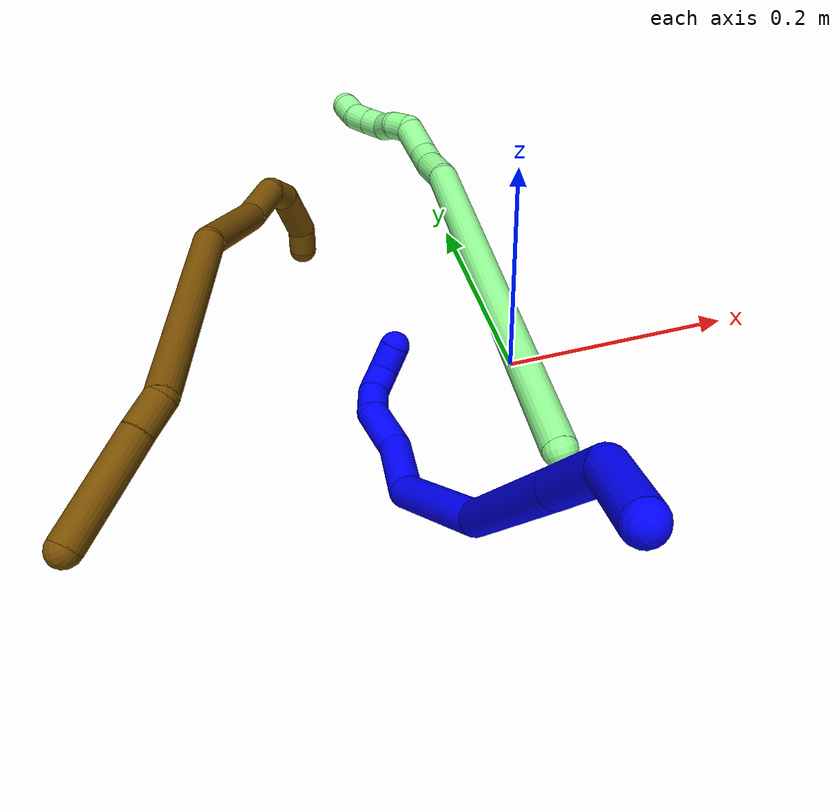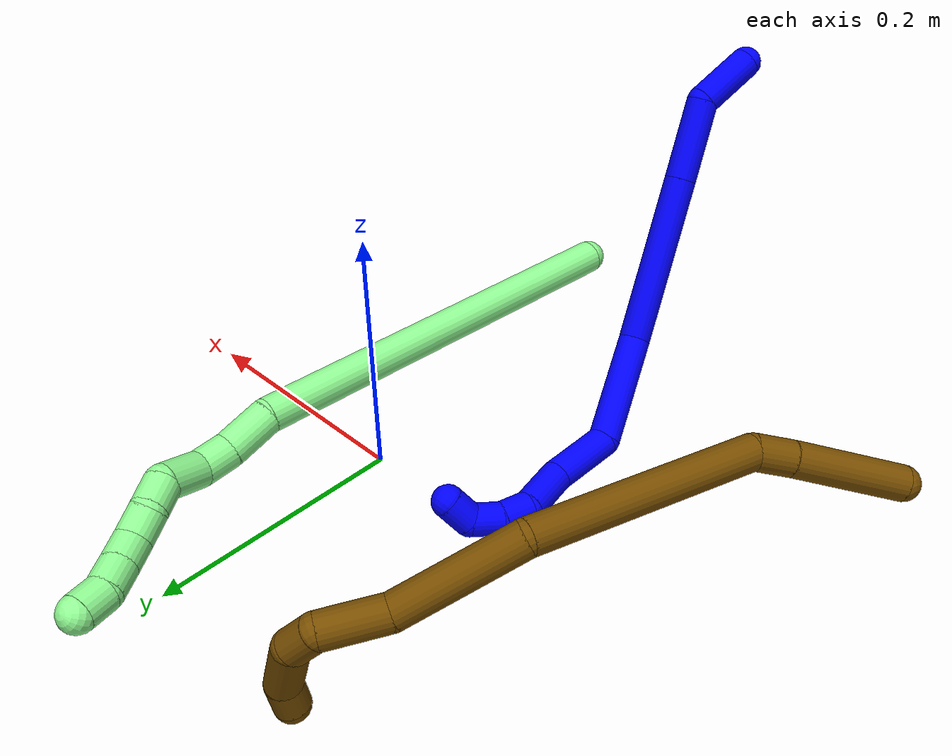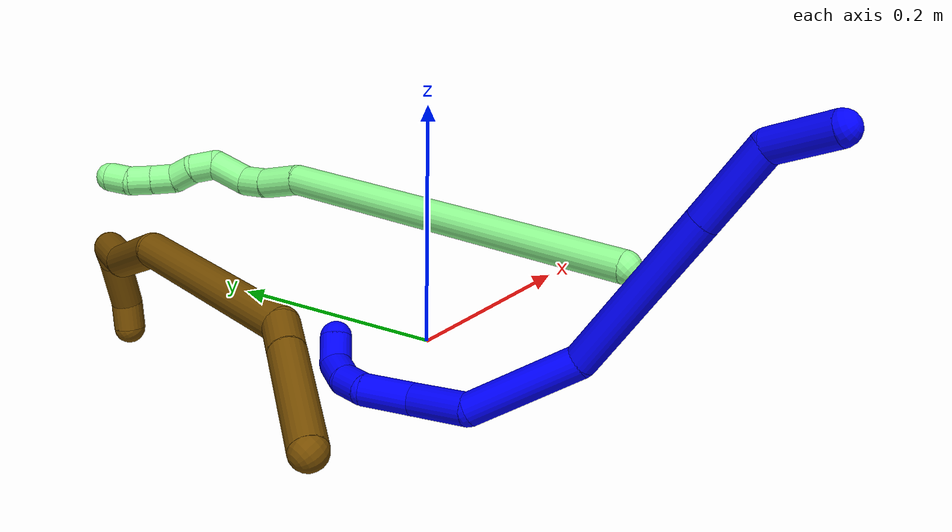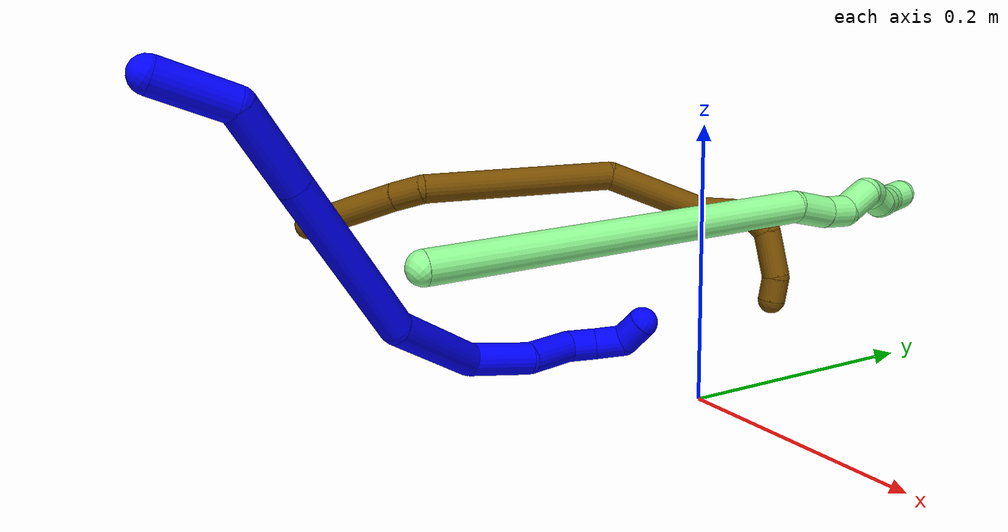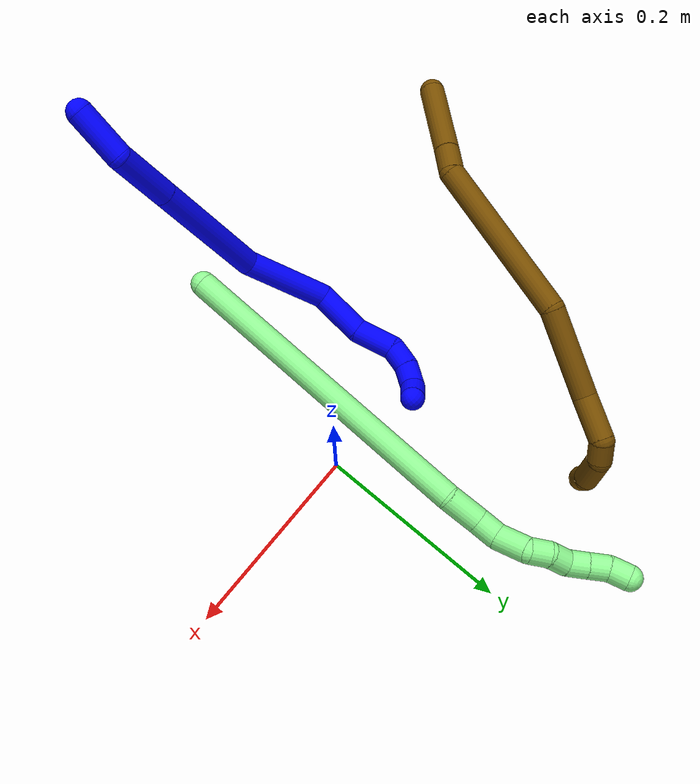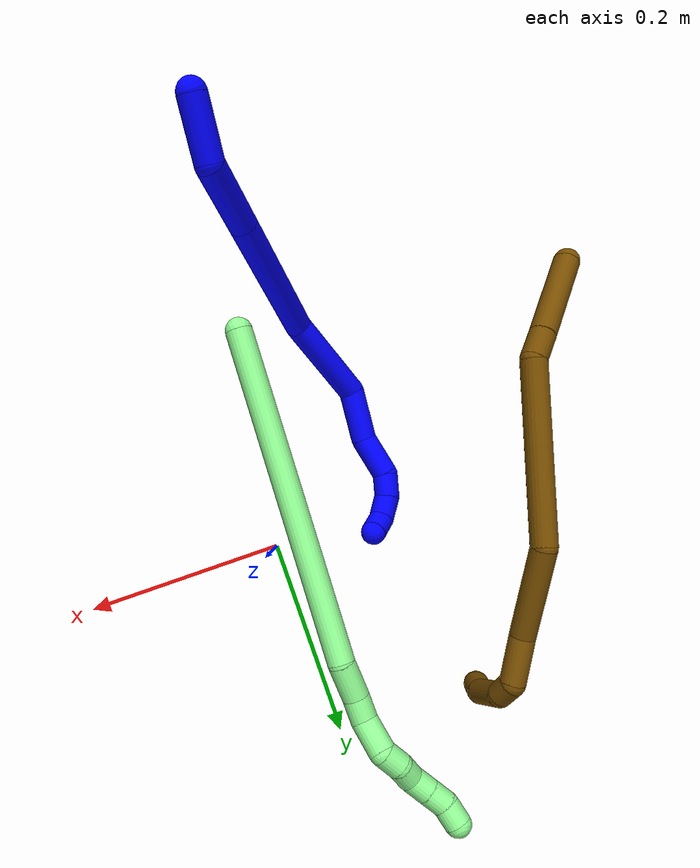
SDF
<sdf version="1.7">
 <world name="default">
  <model name="1">
   <static>0</static>
   <link name="1">
    <collision name="collision-cylinder-e_1_1_4">
     <pose>0.003977 0.002781 -0.02539 -3.03252 0.154456 -1.91278</pose>
     <geometry><cylinder><radius>0.0125</radius><length>0.0517</length></cylinder></geometry>
     <surface>
      <friction><ode><mu>1.16</mu><mu2>1.16</mu2><slip1>0</slip1><slip2>0</slip2></ode></friction>
      <contact><ode><kp>1e+06</kp><kd>1</kd><max_vel>0</max_vel><min_depth>0.001</min_depth></ode></contact>
     </surface>
    </collision>
    <visual name="visual-cylinder-e_1_1_4">
     <pose>0.003977 0.002781 -0.02539 -3.03252 0.154456 -1.91278</pose>
     <geometry><cylinder><radius>0.0125</radius><length>0.0517</length></cylinder></geometry>
     <material><ambient>0 0 1 1</ambient></material>
    </visual>
    <collision name="collision-cylinder-e_2_4_5">
     <pose>-0.002866 -0.003747 -0.079622 2.82942 -0.342912 -1.66626</pose>
     <geometry><cylinder><radius>0.0125</radius><length>0.06436</length></cylinder></geometry>
     <surface>
      <friction><ode><mu>1.16</mu><mu2>1.16</mu2><slip1>0</slip1><slip2>0</slip2></ode></friction>
      <contact><ode><kp>1e+06</kp><kd>1</kd><max_vel>0</max_vel><min_depth>0.001</min_depth></ode></contact>
     </surface>
    </collision>
    <visual name="visual-cylinder-e_2_4_5">
     <pose>-0.002866 -0.003747 -0.079622 2.82942 -0.342912 -1.66626</pose>
     <geometry><cylinder><radius>0.0125</radius><length>0.06436</length></cylinder></geometry>
     <material><ambient>0 0 1 1</ambient></material>
    </visual>
    <collision name="collision-cylinder-e_3_5_6">
     <pose>-0.035807 -0.032065 -0.168338 2.83415 -0.338575 -1.66881</pose>
     <geometry><cylinder><radius>0.0125</radius><length>0.133202</length></cylinder></geometry>
     <surface>
      <friction><ode><mu>1.16</mu><mu2>1.16</mu2><slip1>0</slip1><slip2>0</slip2></ode></friction>
      <contact><ode><kp>1e+06</kp><kd>1</kd><max_vel>0</max_vel><min_depth>0.001</min_depth></ode></contact>
     </surface>
    </collision>
    <visual name="visual-cylinder-e_3_5_6">
     <pose>-0.035807 -0.032065 -0.168338 2.83415 -0.338575 -1.66881</pose>
     <geometry><cylinder><radius>0.0125</radius><length>0.133202</length></cylinder></geometry>
     <material><ambient>0 0 1 1</ambient></material>
    </visual>
    <collision name="collision-cylinder-e_4_6_7">
     <pose>-0.071988 -0.043891 -0.269933 -2.97106 -0.320651 2.16913</pose>
     <geometry><cylinder><radius>0.0125</radius><length>0.089216</length></cylinder></geometry>
     <surface>
      <friction><ode><mu>1.16</mu><mu2>1.16</mu2><slip1>0</slip1><slip2>0</slip2></ode></friction>
      <contact><ode><kp>1e+06</kp><kd>1</kd><max_vel>0</max_vel><min_depth>0.001</min_depth></ode></contact>
     </surface>
    </collision>
    <visual name="visual-cylinder-e_4_6_7">
     <pose>-0.071988 -0.043891 -0.269933 -2.97106 -0.320651 2.16913</pose>
     <geometry><cylinder><radius>0.0125</radius><length>0.089216</length></cylinder></geometry>
     <material><ambient>0 0 1 1</ambient></material>
    </visual>
    <collision name="collision-cylinder-e_5_7_8">
     <pose>-0.079728 -0.028432 -0.334743 -2.79749 0.252179 -1.26049</pose>
     <geometry><cylinder><radius>0.0125</radius><length>0.050658</length></cylinder></geometry>
     <surface>
      <friction><ode><mu>1.16</mu><mu2>1.16</mu2><slip1>0</slip1><slip2>0</slip2></ode></friction>
      <contact><ode><kp>1e+06</kp><kd>1</kd><max_vel>0</max_vel><min_depth>0.001</min_depth></ode></contact>
     </surface>
    </collision>
    <visual name="visual-cylinder-e_5_7_8">
     <pose>-0.079728 -0.028432 -0.334743 -2.79749 0.252179 -1.26049</pose>
     <geometry><cylinder><radius>0.0125</radius><length>0.050658</length></cylinder></geometry>
     <material><ambient>0 0 1 1</ambient></material>
    </visual>
    <collision name="collision-cylinder-e_6_8_9">
     <pose>-0.072383 -0.008476 -0.374804 -2.53876 0.049693 -0.159537</pose>
     <geometry><cylinder><radius>0.0125</radius><length>0.041257</length></cylinder></geometry>
     <surface>
      <friction><ode><mu>1.16</mu><mu2>1.16</mu2><slip1>0</slip1><slip2>0</slip2></ode></friction>
      <contact><ode><kp>1e+06</kp><kd>1</kd><max_vel>0</max_vel><min_depth>0.001</min_depth></ode></contact>
     </surface>
    </collision>
    <visual name="visual-cylinder-e_6_8_9">
     <pose>-0.072383 -0.008476 -0.374804 -2.53876 0.049693 -0.159537</pose>
     <geometry><cylinder><radius>0.0125</radius><length>0.041257</length></cylinder></geometry>
     <material><ambient>0 0 1 1</ambient></material>
    </visual>
    <collision name="collision-cylinder-e_7_9_10">
     <pose>-0.066103 0.007045 -0.401252 -2.75662 0.474815 -1.78546</pose>
     <geometry><cylinder><radius>0.0125</radius><length>0.022992</length></cylinder></geometry>
     <surface>
      <friction><ode><mu>1.16</mu><mu2>1.16</mu2><slip1>0</slip1><slip2>0</slip2></ode></friction>
      <contact><ode><kp>1e+06</kp><kd>1</kd><max_vel>0</max_vel><min_depth>0.001</min_depth></ode></contact>
     </surface>
    </collision>
    <visual name="visual-cylinder-e_7_9_10">
     <pose>-0.066103 0.007045 -0.401252 -2.75662 0.474815 -1.78546</pose>
     <geometry><cylinder><radius>0.0125</radius><length>0.022992</length></cylinder></geometry>
     <material><ambient>0 0 1 1</ambient></material>
    </visual>
    <collision name="collision-cylinder-e_8_10_11">
     <pose>-0.052056 0.013554 -0.418265 -2.80122 0.832683 -2.40026</pose>
     <geometry><cylinder><radius>0.0125</radius><length>0.023766</length></cylinder></geometry>
     <surface>
      <friction><ode><mu>1.16</mu><mu2>1.16</mu2><slip1>0</slip1><slip2>0</slip2></ode></friction>
      <contact><ode><kp>1e+06</kp><kd>1</kd><max_vel>0</max_vel><min_depth>0.001</min_depth></ode></contact>
     </surface>
    </collision>
    <visual name="visual-cylinder-e_8_10_11">
     <pose>-0.052056 0.013554 -0.418265 -2.80122 0.832683 -2.40026</pose>
     <geometry><cylinder><radius>0.0125</radius><length>0.023766</length></cylinder></geometry>
     <material><ambient>0 0 1 1</ambient></material>
    </visual>
    <collision name="collision-cylinder-e_9_11_2">
     <pose>-0.033264 0.021732 -0.425426 -1.50248 1.06641 -1.00757</pose>
     <geometry><cylinder><radius>0.0125</radius><length>0.02285</length></cylinder></geometry>
     <surface>
      <friction><ode><mu>1.16</mu><mu2>1.16</mu2><slip1>0</slip1><slip2>0</slip2></ode></friction>
      <contact><ode><kp>1e+06</kp><kd>1</kd><max_vel>0</max_vel><min_depth>0.001</min_depth></ode></contact>
     </surface>
    </collision>
    <visual name="visual-cylinder-e_9_11_2">
     <pose>-0.033264 0.021732 -0.425426 -1.50248 1.06641 -1.00757</pose>
     <geometry><cylinder><radius>0.0125</radius><length>0.02285</length></cylinder></geometry>
     <material><ambient>0 0 1 1</ambient></material>
    </visual>
    <collision name="collision-sphere-2">
     <pose>-0.023262 0.02724 -0.425049 0 -0 0</pose>
     <geometry><sphere><radius>0.0125</radius></sphere></geometry>
     <surface>
      <friction><ode><mu>1.16</mu><mu2>1.16</mu2><slip1>0</slip1><slip2>0</slip2></ode></friction>
      <contact><ode><kp>1e+06</kp><kd>1</kd><max_vel>0</max_vel><min_depth>0.001</min_depth></ode></contact>
     </surface>
    </collision>
    <visual name="visual-sphere-2">
     <pose>-0.023262 0.02724 -0.425049 0 -0 0</pose>
     <geometry><sphere><radius>0.0125</radius></sphere></geometry>
     <material><ambient>0 0 1 1</ambient></material>
    </visual>
    <collision name="collision-sphere-11">
     <pose>-0.043266 0.016223 -0.425803 0 -0 0</pose>
     <geometry><sphere><radius>0.0125</radius></sphere></geometry>
     <surface>
      <friction><ode><mu>1.16</mu><mu2>1.16</mu2><slip1>0</slip1><slip2>0</slip2></ode></friction>
      <contact><ode><kp>1e+06</kp><kd>1</kd><max_vel>0</max_vel><min_depth>0.001</min_depth></ode></contact>
     </surface>
    </collision>
    <visual name="visual-sphere-11">
     <pose>-0.043266 0.016223 -0.425803 0 -0 0</pose>
     <geometry><sphere><radius>0.0125</radius></sphere></geometry>
     <material><ambient>0 0 1 1</ambient></material>
    </visual>
    <collision name="collision-sphere-10">
     <pose>-0.060847 0.010885 -0.410728 0 -0 0</pose>
     <geometry><sphere><radius>0.0125</radius></sphere></geometry>
     <surface>
      <friction><ode><mu>1.16</mu><mu2>1.16</mu2><slip1>0</slip1><slip2>0</slip2></ode></friction>
      <contact><ode><kp>1e+06</kp><kd>1</kd><max_vel>0</max_vel><min_depth>0.001</min_depth></ode></contact>
     </surface>
    </collision>
    <visual name="visual-sphere-10">
     <pose>-0.060847 0.010885 -0.410728 0 -0 0</pose>
     <geometry><sphere><radius>0.0125</radius></sphere></geometry>
     <material><ambient>0 0 1 1</ambient></material>
    </visual>
    <collision name="collision-sphere-9">
     <pose>-0.071358 0.003205 -0.391776 0 -0 0</pose>
     <geometry><sphere><radius>0.0125</radius></sphere></geometry>
     <surface>
      <friction><ode><mu>1.16</mu><mu2>1.16</mu2><slip1>0</slip1><slip2>0</slip2></ode></friction>
      <contact><ode><kp>1e+06</kp><kd>1</kd><max_vel>0</max_vel><min_depth>0.001</min_depth></ode></contact>
     </surface>
    </collision>
    <visual name="visual-sphere-9">
     <pose>-0.071358 0.003205 -0.391776 0 -0 0</pose>
     <geometry><sphere><radius>0.0125</radius></sphere></geometry>
     <material><ambient>0 0 1 1</ambient></material>
    </visual>
    <collision name="collision-sphere-4">
     <pose>0.007954 0.005561 -0.050781 0 -0 0</pose>
     <geometry><sphere><radius>0.0125</radius></sphere></geometry>
     <surface>
      <friction><ode><mu>1.16</mu><mu2>1.16</mu2><slip1>0</slip1><slip2>0</slip2></ode></friction>
      <contact><ode><kp>1e+06</kp><kd>1</kd><max_vel>0</max_vel><min_depth>0.001</min_depth></ode></contact>
     </surface>
    </collision>
    <visual name="visual-sphere-4">
     <pose>0.007954 0.005561 -0.050781 0 -0 0</pose>
     <geometry><sphere><radius>0.0125</radius></sphere></geometry>
     <material><ambient>0 0 1 1</ambient></material>
    </visual>
    <collision name="collision-sphere-1">
     <geometry><sphere><radius>0.0125</radius></sphere></geometry>
     <surface>
      <friction><ode><mu>1.16</mu><mu2>1.16</mu2><slip1>0</slip1><slip2>0</slip2></ode></friction>
      <contact><ode><kp>1e+06</kp><kd>1</kd><max_vel>0</max_vel><min_depth>0.001</min_depth></ode></contact>
     </surface>
    </collision>
    <visual name="visual-sphere-1">
     <geometry><sphere><radius>0.0125</radius></sphere></geometry>
     <material><ambient>0 0 1 1</ambient></material>
    </visual>
    <collision name="collision-sphere-8">
     <pose>-0.073408 -0.020157 -0.357833 0 -0 0</pose>
     <geometry><sphere><radius>0.0125</radius></sphere></geometry>
     <surface>
      <friction><ode><mu>1.16</mu><mu2>1.16</mu2><slip1>0</slip1><slip2>0</slip2></ode></friction>
      <contact><ode><kp>1e+06</kp><kd>1</kd><max_vel>0</max_vel><min_depth>0.001</min_depth></ode></contact>
     </surface>
    </collision>
    <visual name="visual-sphere-8">
     <pose>-0.073408 -0.020157 -0.357833 0 -0 0</pose>
     <geometry><sphere><radius>0.0125</radius></sphere></geometry>
     <material><ambient>0 0 1 1</ambient></material>
    </visual>
    <collision name="collision-sphere-5">
     <pose>-0.013686 -0.013055 -0.108464 0 -0 0</pose>
     <geometry><sphere><radius>0.0125</radius></sphere></geometry>
     <surface>
      <friction><ode><mu>1.16</mu><mu2>1.16</mu2><slip1>0</slip1><slip2>0</slip2></ode></friction>
      <contact><ode><kp>1e+06</kp><kd>1</kd><max_vel>0</max_vel><min_depth>0.001</min_depth></ode></contact>
     </surface>
    </collision>
    <visual name="visual-sphere-5">
     <pose>-0.013686 -0.013055 -0.108464 0 -0 0</pose>
     <geometry><sphere><radius>0.0125</radius></sphere></geometry>
     <material><ambient>0 0 1 1</ambient></material>
    </visual>
    <collision name="collision-sphere-6">
     <pose>-0.057928 -0.051076 -0.228213 0 -0 0</pose>
     <geometry><sphere><radius>0.0125</radius></sphere></geometry>
     <surface>
      <friction><ode><mu>1.16</mu><mu2>1.16</mu2><slip1>0</slip1><slip2>0</slip2></ode></friction>
      <contact><ode><kp>1e+06</kp><kd>1</kd><max_vel>0</max_vel><min_depth>0.001</min_depth></ode></contact>
     </surface>
    </collision>
    <visual name="visual-sphere-6">
     <pose>-0.057928 -0.051076 -0.228213 0 -0 0</pose>
     <geometry><sphere><radius>0.0125</radius></sphere></geometry>
     <material><ambient>0 0 1 1</ambient></material>
    </visual>
    <collision name="collision-sphere-7">
     <pose>-0.086048 -0.036706 -0.311653 0 -0 0</pose>
     <geometry><sphere><radius>0.0125</radius></sphere></geometry>
     <surface>
      <friction><ode><mu>1.16</mu><mu2>1.16</mu2><slip1>0</slip1><slip2>0</slip2></ode></friction>
      <contact><ode><kp>1e+06</kp><kd>1</kd><max_vel>0</max_vel><min_depth>0.001</min_depth></ode></contact>
     </surface>
    </collision>
    <visual name="visual-sphere-7">
     <pose>-0.086048 -0.036706 -0.311653 0 -0 0</pose>
     <geometry><sphere><radius>0.0125</radius></sphere></geometry>
     <material><ambient>0 0 1 1</ambient></material>
    </visual>
    <inertial>
     <pose>-0.043426 -0.018187 -0.2285 0 -0 0</pose>
     <mass>0.5</mass>
     <inertia>
      <ixx>-0.000243</ixx>
      <ixy>0</ixy>
      <ixz>0</ixz>
      <iyy>-0.000109</iyy>
      <iyz>0</iyz>
      <izz>9.5e-05</izz>
     </inertia>
    </inertial>
   </link>
   <pose>-0.066291 -0.350303 0.244291 0.959793 -0.403969 0.263269</pose>
  </model>
  <model name="12">
   <static>0</static>
   <link name="12">
    <collision name="collision-cylinder-e_1_1_4">
     <pose>0.028521 0.021842 -0.020799 -2.33175 0.757465 -1.49663</pose>
     <geometry><cylinder><radius>0.0125</radius><length>0.083022</length></cylinder></geometry>
     <surface>
      <friction><ode><mu>1.16</mu><mu2>1.16</mu2><slip1>0</slip1><slip2>0</slip2></ode></friction>
      <contact><ode><kp>1e+06</kp><kd>1</kd><max_vel>0</max_vel><min_depth>0.001</min_depth></ode></contact>
     </surface>
    </collision>
    <visual name="visual-cylinder-e_1_1_4">
     <pose>0.028521 0.021842 -0.020799 -2.33175 0.757465 -1.49663</pose>
     <geometry><cylinder><radius>0.0125</radius><length>0.083022</length></cylinder></geometry>
     <material><ambient>0.466667 0.301961 0 1</ambient></material>
    </visual>
    <collision name="collision-cylinder-e_2_4_5">
     <pose>0.06602 0.051529 -0.048286 -2.27671 0.716469 -1.36294</pose>
     <geometry><cylinder><radius>0.0125</radius><length>0.02734</length></cylinder></geometry>
     <surface>
      <friction><ode><mu>1.16</mu><mu2>1.16</mu2><slip1>0</slip1><slip2>0</slip2></ode></friction>
      <contact><ode><kp>1e+06</kp><kd>1</kd><max_vel>0</max_vel><min_depth>0.001</min_depth></ode></contact>
     </surface>
    </collision>
    <visual name="visual-cylinder-e_2_4_5">
     <pose>0.06602 0.051529 -0.048286 -2.27671 0.716469 -1.36294</pose>
     <geometry><cylinder><radius>0.0125</radius><length>0.02734</length></cylinder></geometry>
     <material><ambient>0.466667 0.301961 0 1</ambient></material>
    </visual>
    <collision name="collision-cylinder-e_3_5_6">
     <pose>0.135589 0.117115 -0.056021 -1.58893 0.809398 -0.822606</pose>
     <geometry><cylinder><radius>0.0125</radius><length>0.167408</length></cylinder></geometry>
     <surface>
      <friction><ode><mu>1.16</mu><mu2>1.16</mu2><slip1>0</slip1><slip2>0</slip2></ode></friction>
      <contact><ode><kp>1e+06</kp><kd>1</kd><max_vel>0</max_vel><min_depth>0.001</min_depth></ode></contact>
     </surface>
    </collision>
    <visual name="visual-cylinder-e_3_5_6">
     <pose>0.135589 0.117115 -0.056021 -1.58893 0.809398 -0.822606</pose>
     <geometry><cylinder><radius>0.0125</radius><length>0.167408</length></cylinder></geometry>
     <material><ambient>0.466667 0.301961 0 1</ambient></material>
    </visual>
    <collision name="collision-cylinder-e_4_6_7">
     <pose>0.212381 0.217123 -0.05613 -1.5486 0.365958 -0.358096</pose>
     <geometry><cylinder><radius>0.0125</radius><length>0.09055</length></cylinder></geometry>
     <surface>
      <friction><ode><mu>1.16</mu><mu2>1.16</mu2><slip1>0</slip1><slip2>0</slip2></ode></friction>
      <contact><ode><kp>1e+06</kp><kd>1</kd><max_vel>0</max_vel><min_depth>0.001</min_depth></ode></contact>
     </surface>
    </collision>
    <visual name="visual-cylinder-e_4_6_7">
     <pose>0.212381 0.217123 -0.05613 -1.5486 0.365958 -0.358096</pose>
     <geometry><cylinder><radius>0.0125</radius><length>0.09055</length></cylinder></geometry>
     <material><ambient>0.466667 0.301961 0 1</ambient></material>
    </visual>
    <collision name="collision-cylinder-e_5_7_8">
     <pose>0.241448 0.277498 -0.059291 -1.79344 0.605962 -0.74595</pose>
     <geometry><cylinder><radius>0.0125</radius><length>0.045178</length></cylinder></geometry>
     <surface>
      <friction><ode><mu>1.16</mu><mu2>1.16</mu2><slip1>0</slip1><slip2>0</slip2></ode></friction>
      <contact><ode><kp>1e+06</kp><kd>1</kd><max_vel>0</max_vel><min_depth>0.001</min_depth></ode></contact>
     </surface>
    </collision>
    <visual name="visual-cylinder-e_5_7_8">
     <pose>0.241448 0.277498 -0.059291 -1.79344 0.605962 -0.74595</pose>
     <geometry><cylinder><radius>0.0125</radius><length>0.045178</length></cylinder></geometry>
     <material><ambient>0.466667 0.301961 0 1</ambient></material>
    </visual>
    <collision name="collision-cylinder-e_6_8_9">
     <pose>0.252645 0.306582 -0.063941 -1.62082 -0.150708 0.158411</pose>
     <geometry><cylinder><radius>0.0125</radius><length>0.022228</length></cylinder></geometry>
     <surface>
      <friction><ode><mu>1.16</mu><mu2>1.16</mu2><slip1>0</slip1><slip2>0</slip2></ode></friction>
      <contact><ode><kp>1e+06</kp><kd>1</kd><max_vel>0</max_vel><min_depth>0.001</min_depth></ode></contact>
     </surface>
    </collision>
    <visual name="visual-cylinder-e_6_8_9">
     <pose>0.252645 0.306582 -0.063941 -1.62082 -0.150708 0.158411</pose>
     <geometry><cylinder><radius>0.0125</radius><length>0.022228</length></cylinder></geometry>
     <material><ambient>0.466667 0.301961 0 1</ambient></material>
    </visual>
    <collision name="collision-cylinder-e_7_9_10">
     <pose>0.2383 0.334124 -0.060071 -1.31016 -0.636619 0.495881</pose>
     <geometry><cylinder><radius>0.0125</radius><length>0.042648</length></cylinder></geometry>
     <surface>
      <friction><ode><mu>1.16</mu><mu2>1.16</mu2><slip1>0</slip1><slip2>0</slip2></ode></friction>
      <contact><ode><kp>1e+06</kp><kd>1</kd><max_vel>0</max_vel><min_depth>0.001</min_depth></ode></contact>
     </surface>
    </collision>
    <visual name="visual-cylinder-e_7_9_10">
     <pose>0.2383 0.334124 -0.060071 -1.31016 -0.636619 0.495881</pose>
     <geometry><cylinder><radius>0.0125</radius><length>0.042648</length></cylinder></geometry>
     <material><ambient>0.466667 0.301961 0 1</ambient></material>
    </visual>
    <collision name="collision-cylinder-e_8_10_2">
     <pose>0.217817 0.356189 -0.050578 -0.825372 -0.806639 0.369394</pose>
     <geometry><cylinder><radius>0.0125</radius><length>0.021625</length></cylinder></geometry>
     <surface>
      <friction><ode><mu>1.16</mu><mu2>1.16</mu2><slip1>0</slip1><slip2>0</slip2></ode></friction>
      <contact><ode><kp>1e+06</kp><kd>1</kd><max_vel>0</max_vel><min_depth>0.001</min_depth></ode></contact>
     </surface>
    </collision>
    <visual name="visual-cylinder-e_8_10_2">
     <pose>0.217817 0.356189 -0.050578 -0.825372 -0.806639 0.369394</pose>
     <geometry><cylinder><radius>0.0125</radius><length>0.021625</length></cylinder></geometry>
     <material><ambient>0.466667 0.301961 0 1</ambient></material>
    </visual>
    <collision name="collision-sphere-2">
     <pose>0.21001 0.361687 -0.045503 0 -0 0</pose>
     <geometry><sphere><radius>0.0125</radius></sphere></geometry>
     <surface>
      <friction><ode><mu>1.16</mu><mu2>1.16</mu2><slip1>0</slip1><slip2>0</slip2></ode></friction>
      <contact><ode><kp>1e+06</kp><kd>1</kd><max_vel>0</max_vel><min_depth>0.001</min_depth></ode></contact>
     </surface>
    </collision>
    <visual name="visual-sphere-2">
     <pose>0.21001 0.361687 -0.045503 0 -0 0</pose>
     <geometry><sphere><radius>0.0125</radius></sphere></geometry>
     <material><ambient>0.466667 0.301961 0 1</ambient></material>
    </visual>
    <collision name="collision-sphere-10">
     <pose>0.225623 0.350692 -0.055653 0 -0 0</pose>
     <geometry><sphere><radius>0.0125</radius></sphere></geometry>
     <surface>
      <friction><ode><mu>1.16</mu><mu2>1.16</mu2><slip1>0</slip1><slip2>0</slip2></ode></friction>
      <contact><ode><kp>1e+06</kp><kd>1</kd><max_vel>0</max_vel><min_depth>0.001</min_depth></ode></contact>
     </surface>
    </collision>
    <visual name="visual-sphere-10">
     <pose>0.225623 0.350692 -0.055653 0 -0 0</pose>
     <geometry><sphere><radius>0.0125</radius></sphere></geometry>
     <material><ambient>0.466667 0.301961 0 1</ambient></material>
    </visual>
    <collision name="collision-sphere-9">
     <pose>0.250976 0.317556 -0.06449 0 -0 0</pose>
     <geometry><sphere><radius>0.0125</radius></sphere></geometry>
     <surface>
      <friction><ode><mu>1.16</mu><mu2>1.16</mu2><slip1>0</slip1><slip2>0</slip2></ode></friction>
      <contact><ode><kp>1e+06</kp><kd>1</kd><max_vel>0</max_vel><min_depth>0.001</min_depth></ode></contact>
     </surface>
    </collision>
    <visual name="visual-sphere-9">
     <pose>0.250976 0.317556 -0.06449 0 -0 0</pose>
     <geometry><sphere><radius>0.0125</radius></sphere></geometry>
     <material><ambient>0.466667 0.301961 0 1</ambient></material>
    </visual>
    <collision name="collision-sphere-4">
     <pose>0.057043 0.043684 -0.041599 0 -0 0</pose>
     <geometry><sphere><radius>0.0125</radius></sphere></geometry>
     <surface>
      <friction><ode><mu>1.16</mu><mu2>1.16</mu2><slip1>0</slip1><slip2>0</slip2></ode></friction>
      <contact><ode><kp>1e+06</kp><kd>1</kd><max_vel>0</max_vel><min_depth>0.001</min_depth></ode></contact>
     </surface>
    </collision>
    <visual name="visual-sphere-4">
     <pose>0.057043 0.043684 -0.041599 0 -0 0</pose>
     <geometry><sphere><radius>0.0125</radius></sphere></geometry>
     <material><ambient>0.466667 0.301961 0 1</ambient></material>
    </visual>
    <collision name="collision-sphere-1">
     <geometry><sphere><radius>0.0125</radius></sphere></geometry>
     <surface>
      <friction><ode><mu>1.16</mu><mu2>1.16</mu2><slip1>0</slip1><slip2>0</slip2></ode></friction>
      <contact><ode><kp>1e+06</kp><kd>1</kd><max_vel>0</max_vel><min_depth>0.001</min_depth></ode></contact>
     </surface>
    </collision>
    <visual name="visual-sphere-1">
     <geometry><sphere><radius>0.0125</radius></sphere></geometry>
     <material><ambient>0.466667 0.301961 0 1</ambient></material>
    </visual>
    <collision name="collision-sphere-8">
     <pose>0.254314 0.295607 -0.063391 0 -0 0</pose>
     <geometry><sphere><radius>0.0125</radius></sphere></geometry>
     <surface>
      <friction><ode><mu>1.16</mu><mu2>1.16</mu2><slip1>0</slip1><slip2>0</slip2></ode></friction>
      <contact><ode><kp>1e+06</kp><kd>1</kd><max_vel>0</max_vel><min_depth>0.001</min_depth></ode></contact>
     </surface>
    </collision>
    <visual name="visual-sphere-8">
     <pose>0.254314 0.295607 -0.063391 0 -0 0</pose>
     <geometry><sphere><radius>0.0125</radius></sphere></geometry>
     <material><ambient>0.466667 0.301961 0 1</ambient></material>
    </visual>
    <collision name="collision-sphere-5">
     <pose>0.074998 0.059375 -0.054974 0 -0 0</pose>
     <geometry><sphere><radius>0.0125</radius></sphere></geometry>
     <surface>
      <friction><ode><mu>1.16</mu><mu2>1.16</mu2><slip1>0</slip1><slip2>0</slip2></ode></friction>
      <contact><ode><kp>1e+06</kp><kd>1</kd><max_vel>0</max_vel><min_depth>0.001</min_depth></ode></contact>
     </surface>
    </collision>
    <visual name="visual-sphere-5">
     <pose>0.074998 0.059375 -0.054974 0 -0 0</pose>
     <geometry><sphere><radius>0.0125</radius></sphere></geometry>
     <material><ambient>0.466667 0.301961 0 1</ambient></material>
    </visual>
    <collision name="collision-sphere-6">
     <pose>0.19618 0.174856 -0.057068 0 -0 0</pose>
     <geometry><sphere><radius>0.0125</radius></sphere></geometry>
     <surface>
      <friction><ode><mu>1.16</mu><mu2>1.16</mu2><slip1>0</slip1><slip2>0</slip2></ode></friction>
      <contact><ode><kp>1e+06</kp><kd>1</kd><max_vel>0</max_vel><min_depth>0.001</min_depth></ode></contact>
     </surface>
    </collision>
    <visual name="visual-sphere-6">
     <pose>0.19618 0.174856 -0.057068 0 -0 0</pose>
     <geometry><sphere><radius>0.0125</radius></sphere></geometry>
     <material><ambient>0.466667 0.301961 0 1</ambient></material>
    </visual>
    <collision name="collision-sphere-7">
     <pose>0.228582 0.259389 -0.055191 0 -0 0</pose>
     <geometry><sphere><radius>0.0125</radius></sphere></geometry>
     <surface>
      <friction><ode><mu>1.16</mu><mu2>1.16</mu2><slip1>0</slip1><slip2>0</slip2></ode></friction>
      <contact><ode><kp>1e+06</kp><kd>1</kd><max_vel>0</max_vel><min_depth>0.001</min_depth></ode></contact>
     </surface>
    </collision>
    <visual name="visual-sphere-7">
     <pose>0.228582 0.259389 -0.055191 0 -0 0</pose>
     <geometry><sphere><radius>0.0125</radius></sphere></geometry>
     <material><ambient>0.466667 0.301961 0 1</ambient></material>
    </visual>
    <inertial>
     <pose>0.155 0.167586 -0.050527 0 -0 0</pose>
     <mass>0.5</mass>
     <inertia>
      <ixx>1.5e-05</ixx>
      <ixy>0</ixy>
      <ixz>0</ixz>
      <iyy>1.2e-05</iyy>
      <iyz>0</iyz>
      <izz>-0.000731</izz>
     </inertia>
    </inertial>
   </link>
   <pose>-0.34736 -0.163383 0.089322 -2.19314 -0.678534 1.70446</pose>
  </model>
  <model name="13">
   <static>0</static>
   <link name="13">
    <collision name="collision-cylinder-e_1_1_4">
     <pose>0.006052 0.092417 0.124419 -0.63887 0.039028 -0.01291</pose>
     <geometry><cylinder><radius>0.0125</radius><length>0.310211</length></cylinder></geometry>
     <surface>
      <friction><ode><mu>1.16</mu><mu2>1.16</mu2><slip1>0</slip1><slip2>0</slip2></ode></friction>
      <contact><ode><kp>1e+06</kp><kd>1</kd><max_vel>0</max_vel><min_depth>0.001</min_depth></ode></contact>
     </surface>
    </collision>
    <visual name="visual-cylinder-e_1_1_4">
     <pose>0.006052 0.092417 0.124419 -0.63887 0.039028 -0.01291</pose>
     <geometry><cylinder><radius>0.0125</radius><length>0.310211</length></cylinder></geometry>
     <material><ambient>0.564706 0.984314 0.572549 1</ambient></material>
    </visual>
    <collision name="collision-cylinder-e_2_4_5">
     <pose>0.010696 0.198289 0.259601 -0.896136 -0.081533 0.039207</pose>
     <geometry><cylinder><radius>0.0125</radius><length>0.034574</length></cylinder></geometry>
     <surface>
      <friction><ode><mu>1.16</mu><mu2>1.16</mu2><slip1>0</slip1><slip2>0</slip2></ode></friction>
      <contact><ode><kp>1e+06</kp><kd>1</kd><max_vel>0</max_vel><min_depth>0.001</min_depth></ode></contact>
     </surface>
    </collision>
    <visual name="visual-cylinder-e_2_4_5">
     <pose>0.010696 0.198289 0.259601 -0.896136 -0.081533 0.039207</pose>
     <geometry><cylinder><radius>0.0125</radius><length>0.034574</length></cylinder></geometry>
     <material><ambient>0.564706 0.984314 0.572549 1</ambient></material>
    </visual>
    <collision name="collision-cylinder-e_3_5_6">
     <pose>0.00906 0.219426 0.278857 -0.735209 -0.019877 0.007655</pose>
     <geometry><cylinder><radius>0.0125</radius><length>0.02291</length></cylinder></geometry>
     <surface>
      <friction><ode><mu>1.16</mu><mu2>1.16</mu2><slip1>0</slip1><slip2>0</slip2></ode></friction>
      <contact><ode><kp>1e+06</kp><kd>1</kd><max_vel>0</max_vel><min_depth>0.001</min_depth></ode></contact>
     </surface>
    </collision>
    <visual name="visual-cylinder-e_3_5_6">
     <pose>0.00906 0.219426 0.278857 -0.735209 -0.019877 0.007655</pose>
     <geometry><cylinder><radius>0.0125</radius><length>0.02291</length></cylinder></geometry>
     <material><ambient>0.564706 0.984314 0.572549 1</ambient></material>
    </visual>
    <collision name="collision-cylinder-e_4_6_7">
     <pose>0.006352 0.231497 0.302388 -0.284012 -0.157087 0.022504</pose>
     <geometry><cylinder><radius>0.0125</radius><length>0.031718</length></cylinder></geometry>
     <surface>
      <friction><ode><mu>1.16</mu><mu2>1.16</mu2><slip1>0</slip1><slip2>0</slip2></ode></friction>
      <contact><ode><kp>1e+06</kp><kd>1</kd><max_vel>0</max_vel><min_depth>0.001</min_depth></ode></contact>
     </surface>
    </collision>
    <visual name="visual-cylinder-e_4_6_7">
     <pose>0.006352 0.231497 0.302388 -0.284012 -0.157087 0.022504</pose>
     <geometry><cylinder><radius>0.0125</radius><length>0.031718</length></cylinder></geometry>
     <material><ambient>0.564706 0.984314 0.572549 1</ambient></material>
    </visual>
    <collision name="collision-cylinder-e_5_7_8">
     <pose>-0.001441 0.242479 0.323183 -0.852785 -0.545384 0.252722</pose>
     <geometry><cylinder><radius>0.0125</radius><length>0.020479</length></cylinder></geometry>
     <surface>
      <friction><ode><mu>1.16</mu><mu2>1.16</mu2><slip1>0</slip1><slip2>0</slip2></ode></friction>
      <contact><ode><kp>1e+06</kp><kd>1</kd><max_vel>0</max_vel><min_depth>0.001</min_depth></ode></contact>
     </surface>
    </collision>
    <visual name="visual-cylinder-e_5_7_8">
     <pose>-0.001441 0.242479 0.323183 -0.852785 -0.545384 0.252722</pose>
     <geometry><cylinder><radius>0.0125</radius><length>0.020479</length></cylinder></geometry>
     <material><ambient>0.564706 0.984314 0.572549 1</ambient></material>
    </visual>
    <collision name="collision-cylinder-e_6_8_9">
     <pose>-0.01003 0.257844 0.332578 -1.17786 -0.332316 0.223124</pose>
     <geometry><cylinder><radius>0.0125</radius><length>0.02009</length></cylinder></geometry>
     <surface>
      <friction><ode><mu>1.16</mu><mu2>1.16</mu2><slip1>0</slip1><slip2>0</slip2></ode></friction>
      <contact><ode><kp>1e+06</kp><kd>1</kd><max_vel>0</max_vel><min_depth>0.001</min_depth></ode></contact>
     </surface>
    </collision>
    <visual name="visual-cylinder-e_6_8_9">
     <pose>-0.01003 0.257844 0.332578 -1.17786 -0.332316 0.223124</pose>
     <geometry><cylinder><radius>0.0125</radius><length>0.02009</length></cylinder></geometry>
     <material><ambient>0.564706 0.984314 0.572549 1</ambient></material>
    </visual>
    <collision name="collision-cylinder-e_7_9_10">
     <pose>-0.018735 0.272119 0.342563 -0.714228 -0.573629 0.219214</pose>
     <geometry><cylinder><radius>0.0125</radius><length>0.020007</length></cylinder></geometry>
     <surface>
      <friction><ode><mu>1.16</mu><mu2>1.16</mu2><slip1>0</slip1><slip2>0</slip2></ode></friction>
      <contact><ode><kp>1e+06</kp><kd>1</kd><max_vel>0</max_vel><min_depth>0.001</min_depth></ode></contact>
     </surface>
    </collision>
    <visual name="visual-cylinder-e_7_9_10">
     <pose>-0.018735 0.272119 0.342563 -0.714228 -0.573629 0.219214</pose>
     <geometry><cylinder><radius>0.0125</radius><length>0.020007</length></cylinder></geometry>
     <material><ambient>0.564706 0.984314 0.572549 1</ambient></material>
    </visual>
    <collision name="collision-cylinder-e_8_10_11">
     <pose>-0.029624 0.282829 0.355476 -0.670505 -0.577566 0.206279</pose>
     <geometry><cylinder><radius>0.0125</radius><length>0.020002</length></cylinder></geometry>
     <surface>
      <friction><ode><mu>1.16</mu><mu2>1.16</mu2><slip1>0</slip1><slip2>0</slip2></ode></friction>
      <contact><ode><kp>1e+06</kp><kd>1</kd><max_vel>0</max_vel><min_depth>0.001</min_depth></ode></contact>
     </surface>
    </collision>
    <visual name="visual-cylinder-e_8_10_11">
     <pose>-0.029624 0.282829 0.355476 -0.670505 -0.577566 0.206279</pose>
     <geometry><cylinder><radius>0.0125</radius><length>0.020002</length></cylinder></geometry>
     <material><ambient>0.564706 0.984314 0.572549 1</ambient></material>
    </visual>
    <collision name="collision-cylinder-e_9_11_2">
     <pose>-0.037412 0.293263 0.370248 -0.567183 -0.234801 0.068721</pose>
     <geometry><cylinder><radius>0.0125</radius><length>0.020009</length></cylinder></geometry>
     <surface>
      <friction><ode><mu>1.16</mu><mu2>1.16</mu2><slip1>0</slip1><slip2>0</slip2></ode></friction>
      <contact><ode><kp>1e+06</kp><kd>1</kd><max_vel>0</max_vel><min_depth>0.001</min_depth></ode></contact>
     </surface>
    </collision>
    <visual name="visual-cylinder-e_9_11_2">
     <pose>-0.037412 0.293263 0.370248 -0.567183 -0.234801 0.068721</pose>
     <geometry><cylinder><radius>0.0125</radius><length>0.020009</length></cylinder></geometry>
     <material><ambient>0.564706 0.984314 0.572549 1</ambient></material>
    </visual>
    <collision name="collision-sphere-2">
     <pose>-0.03974 0.298491 0.378454 0 -0 0</pose>
     <geometry><sphere><radius>0.0125</radius></sphere></geometry>
     <surface>
      <friction><ode><mu>1.16</mu><mu2>1.16</mu2><slip1>0</slip1><slip2>0</slip2></ode></friction>
      <contact><ode><kp>1e+06</kp><kd>1</kd><max_vel>0</max_vel><min_depth>0.001</min_depth></ode></contact>
     </surface>
    </collision>
    <visual name="visual-sphere-2">
     <pose>-0.03974 0.298491 0.378454 0 -0 0</pose>
     <geometry><sphere><radius>0.0125</radius></sphere></geometry>
     <material><ambient>0.564706 0.984314 0.572549 1</ambient></material>
    </visual>
    <collision name="collision-sphere-11">
     <pose>-0.035085 0.288036 0.362041 0 -0 0</pose>
     <geometry><sphere><radius>0.0125</radius></sphere></geometry>
     <surface>
      <friction><ode><mu>1.16</mu><mu2>1.16</mu2><slip1>0</slip1><slip2>0</slip2></ode></friction>
      <contact><ode><kp>1e+06</kp><kd>1</kd><max_vel>0</max_vel><min_depth>0.001</min_depth></ode></contact>
     </surface>
    </collision>
    <visual name="visual-sphere-11">
     <pose>-0.035085 0.288036 0.362041 0 -0 0</pose>
     <geometry><sphere><radius>0.0125</radius></sphere></geometry>
     <material><ambient>0.564706 0.984314 0.572549 1</ambient></material>
    </visual>
    <collision name="collision-sphere-10">
     <pose>-0.024164 0.277623 0.348911 0 -0 0</pose>
     <geometry><sphere><radius>0.0125</radius></sphere></geometry>
     <surface>
      <friction><ode><mu>1.16</mu><mu2>1.16</mu2><slip1>0</slip1><slip2>0</slip2></ode></friction>
      <contact><ode><kp>1e+06</kp><kd>1</kd><max_vel>0</max_vel><min_depth>0.001</min_depth></ode></contact>
     </surface>
    </collision>
    <visual name="visual-sphere-10">
     <pose>-0.024164 0.277623 0.348911 0 -0 0</pose>
     <geometry><sphere><radius>0.0125</radius></sphere></geometry>
     <material><ambient>0.564706 0.984314 0.572549 1</ambient></material>
    </visual>
    <collision name="collision-sphere-9">
     <pose>-0.013307 0.266615 0.336214 0 -0 0</pose>
     <geometry><sphere><radius>0.0125</radius></sphere></geometry>
     <surface>
      <friction><ode><mu>1.16</mu><mu2>1.16</mu2><slip1>0</slip1><slip2>0</slip2></ode></friction>
      <contact><ode><kp>1e+06</kp><kd>1</kd><max_vel>0</max_vel><min_depth>0.001</min_depth></ode></contact>
     </surface>
    </collision>
    <visual name="visual-sphere-9">
     <pose>-0.013307 0.266615 0.336214 0 -0 0</pose>
     <geometry><sphere><radius>0.0125</radius></sphere></geometry>
     <material><ambient>0.564706 0.984314 0.572549 1</ambient></material>
    </visual>
    <collision name="collision-sphere-4">
     <pose>0.012104 0.184835 0.248839 0 -0 0</pose>
     <geometry><sphere><radius>0.0125</radius></sphere></geometry>
     <surface>
      <friction><ode><mu>1.16</mu><mu2>1.16</mu2><slip1>0</slip1><slip2>0</slip2></ode></friction>
      <contact><ode><kp>1e+06</kp><kd>1</kd><max_vel>0</max_vel><min_depth>0.001</min_depth></ode></contact>
     </surface>
    </collision>
    <visual name="visual-sphere-4">
     <pose>0.012104 0.184835 0.248839 0 -0 0</pose>
     <geometry><sphere><radius>0.0125</radius></sphere></geometry>
     <material><ambient>0.564706 0.984314 0.572549 1</ambient></material>
    </visual>
    <collision name="collision-sphere-1">
     <geometry><sphere><radius>0.0125</radius></sphere></geometry>
     <surface>
      <friction><ode><mu>1.16</mu><mu2>1.16</mu2><slip1>0</slip1><slip2>0</slip2></ode></friction>
      <contact><ode><kp>1e+06</kp><kd>1</kd><max_vel>0</max_vel><min_depth>0.001</min_depth></ode></contact>
     </surface>
    </collision>
    <visual name="visual-sphere-1">
     <geometry><sphere><radius>0.0125</radius></sphere></geometry>
     <material><ambient>0.564706 0.984314 0.572549 1</ambient></material>
    </visual>
    <collision name="collision-sphere-8">
     <pose>-0.006753 0.249072 0.328942 0 -0 0</pose>
     <geometry><sphere><radius>0.0125</radius></sphere></geometry>
     <surface>
      <friction><ode><mu>1.16</mu><mu2>1.16</mu2><slip1>0</slip1><slip2>0</slip2></ode></friction>
      <contact><ode><kp>1e+06</kp><kd>1</kd><max_vel>0</max_vel><min_depth>0.001</min_depth></ode></contact>
     </surface>
    </collision>
    <visual name="visual-sphere-8">
     <pose>-0.006753 0.249072 0.328942 0 -0 0</pose>
     <geometry><sphere><radius>0.0125</radius></sphere></geometry>
     <material><ambient>0.564706 0.984314 0.572549 1</ambient></material>
    </visual>
    <collision name="collision-sphere-5">
     <pose>0.009288 0.211744 0.270363 0 -0 0</pose>
     <geometry><sphere><radius>0.0125</radius></sphere></geometry>
     <surface>
      <friction><ode><mu>1.16</mu><mu2>1.16</mu2><slip1>0</slip1><slip2>0</slip2></ode></friction>
      <contact><ode><kp>1e+06</kp><kd>1</kd><max_vel>0</max_vel><min_depth>0.001</min_depth></ode></contact>
     </surface>
    </collision>
    <visual name="visual-sphere-5">
     <pose>0.009288 0.211744 0.270363 0 -0 0</pose>
     <geometry><sphere><radius>0.0125</radius></sphere></geometry>
     <material><ambient>0.564706 0.984314 0.572549 1</ambient></material>
    </visual>
    <collision name="collision-sphere-6">
     <pose>0.008833 0.227108 0.287352 0 -0 0</pose>
     <geometry><sphere><radius>0.0125</radius></sphere></geometry>
     <surface>
      <friction><ode><mu>1.16</mu><mu2>1.16</mu2><slip1>0</slip1><slip2>0</slip2></ode></friction>
      <contact><ode><kp>1e+06</kp><kd>1</kd><max_vel>0</max_vel><min_depth>0.001</min_depth></ode></contact>
     </surface>
    </collision>
    <visual name="visual-sphere-6">
     <pose>0.008833 0.227108 0.287352 0 -0 0</pose>
     <geometry><sphere><radius>0.0125</radius></sphere></geometry>
     <material><ambient>0.564706 0.984314 0.572549 1</ambient></material>
    </visual>
    <collision name="collision-sphere-7">
     <pose>0.003871 0.235886 0.317424 0 -0 0</pose>
     <geometry><sphere><radius>0.0125</radius></sphere></geometry>
     <surface>
      <friction><ode><mu>1.16</mu><mu2>1.16</mu2><slip1>0</slip1><slip2>0</slip2></ode></friction>
      <contact><ode><kp>1e+06</kp><kd>1</kd><max_vel>0</max_vel><min_depth>0.001</min_depth></ode></contact>
     </surface>
    </collision>
    <visual name="visual-sphere-7">
     <pose>0.003871 0.235886 0.317424 0 -0 0</pose>
     <geometry><sphere><radius>0.0125</radius></sphere></geometry>
     <material><ambient>0.564706 0.984314 0.572549 1</ambient></material>
    </visual>
    <inertial>
     <pose>0.001418 0.150019 0.196447 0 -0 0</pose>
     <mass>0.5</mass>
     <inertia>
      <ixx>0.002481</ixx>
      <ixy>0</ixy>
      <ixz>0</ixz>
      <iyy>0.002013</iyy>
      <iyz>0</iyz>
      <izz>-0.001564</izz>
     </inertia>
    </inertial>
   </link>
   <pose>-0.038479 -0.197218 0.116639 -0.903243 -0.102574 -0.000334</pose>
  </model>
 </world>
</sdf>
